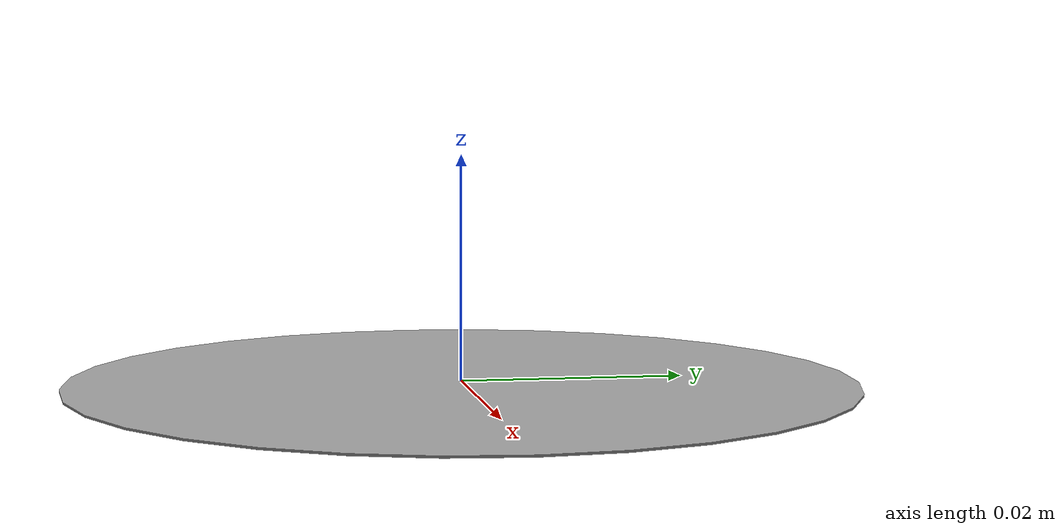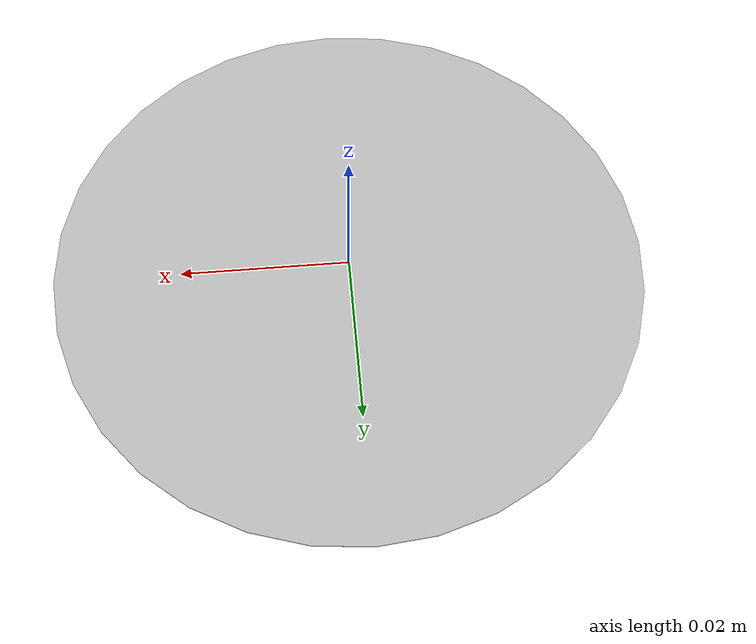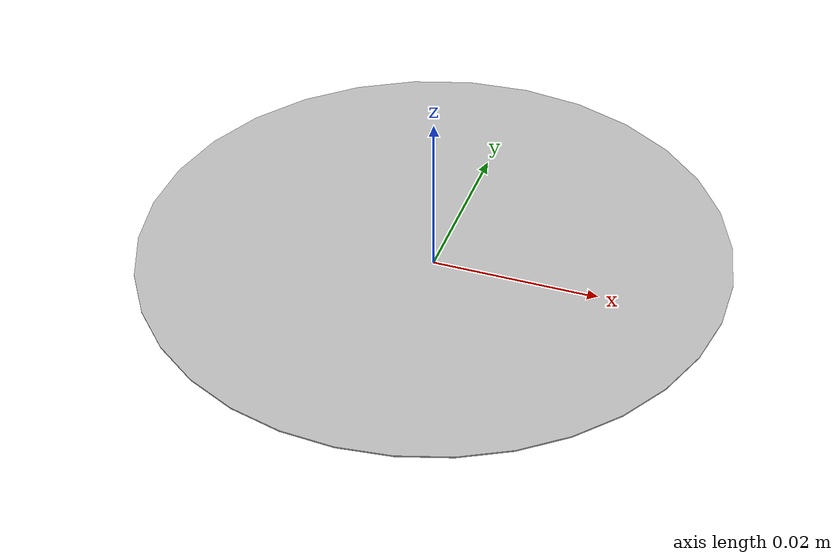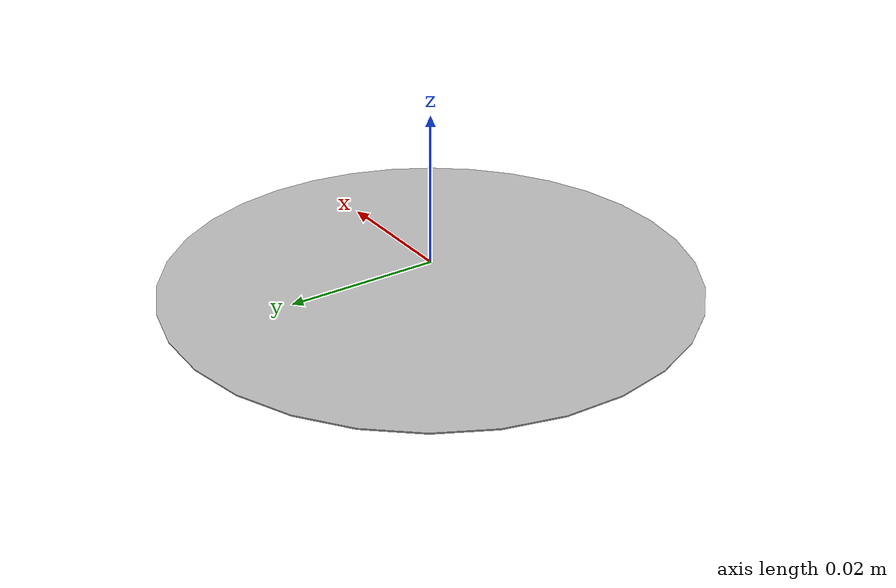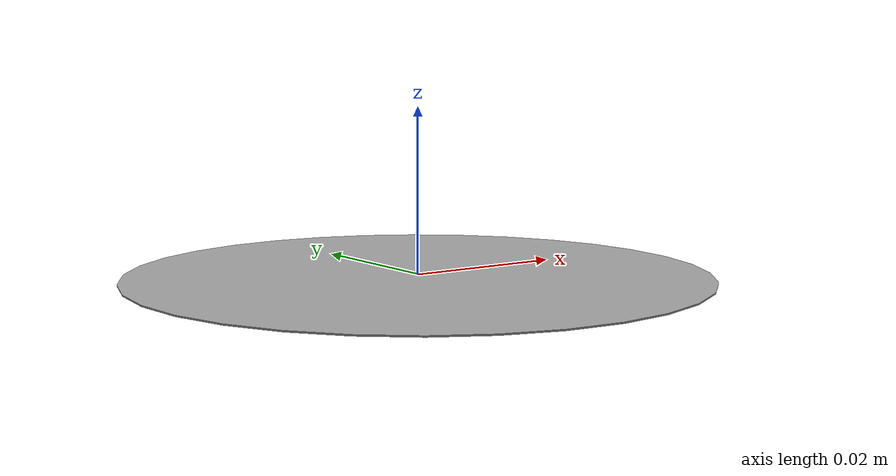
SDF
<?xml version="1.0"?>
<sdf version='1.4'>
    <model name="roundabout">
        <static>1</static>
        <link name="link_1">
            <visual name='visual'>
                <pose frame=''>0 0 0 0 0 0</pose>
                <geometry>
                    <mesh>
                        <uri>model://roundabout/meshes/roundabout.dae</uri>
                    </mesh>
                </geometry>
            </visual>
        </link>
    </model>
</sdf>
